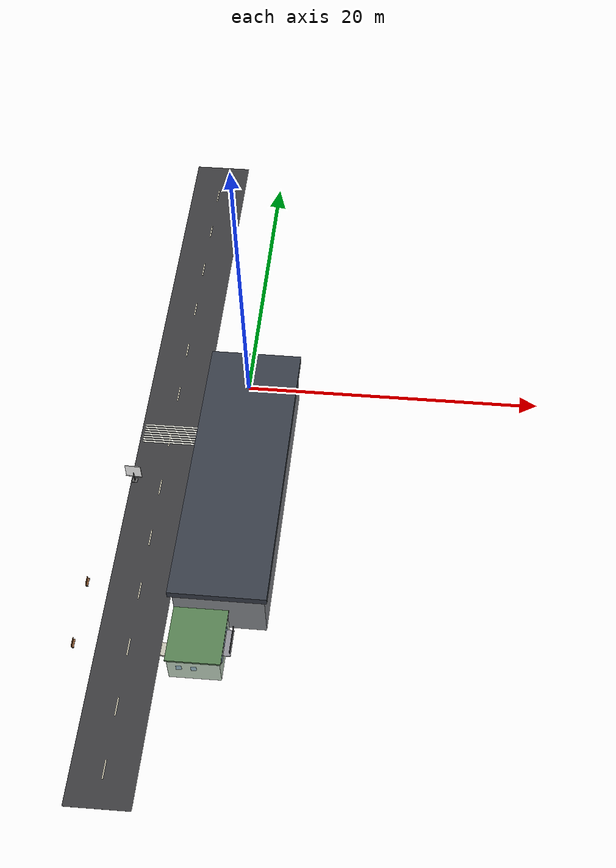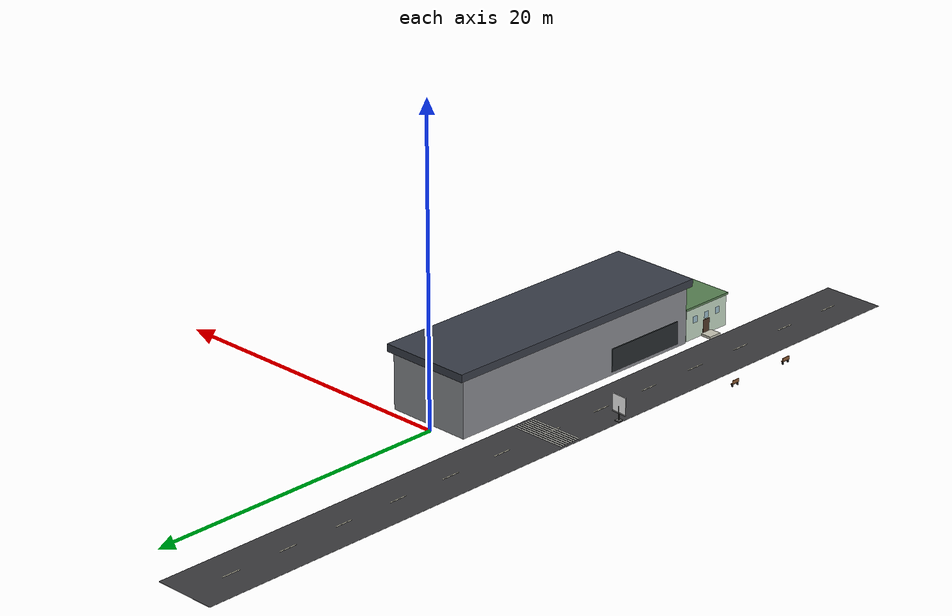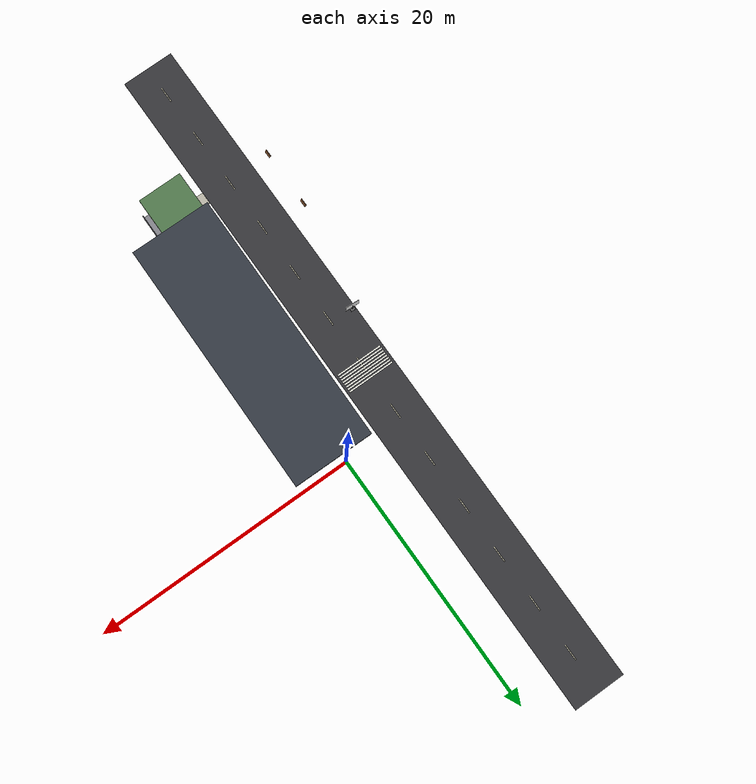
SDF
<sdf version="1.10">
 <world name="city">
  <model name="road_central_northsouth">
   <static>true</static>
   <pose>-4.79999389648438 -4.47619018554688 0 0 0 1.57080003571763</pose>
   <link name="link">
    <collision name="road_col">
     <pose>0 0 0.004 0 0 0</pose>
     <geometry><box><size>53.6 4 0.008</size></box></geometry>
    </collision>
    <visual name="road_vis">
     <pose>0 0 0.004 0 0 0</pose>
     <geometry><box><size>53.6 4 0.008</size></box></geometry>
     <material>
      <ambient>0.230000004 0.230000004 0.239999995 1</ambient>
      <diffuse>0.230000004 0.230000004 0.239999995 1</diffuse>
      <specular>0.0799999982 0.0799999982 0.0799999982 1</specular>
     </material>
    </visual>
    <visual name="dash0_vis">
     <pose>-24.4 0 0.0088 0 0 0</pose>
     <geometry><box><size>1.2 0.072 0.004</size></box></geometry>
     <material>
      <ambient>0.959999979 0.939999998 0.829999983 1</ambient>
      <diffuse>0.959999979 0.939999998 0.829999983 1</diffuse>
      <specular>0.0799999982 0.0799999982 0.0799999982 1</specular>
     </material>
    </visual>
    <visual name="dash1_vis">
     <pose>-20.4 0 0.0088 0 0 0</pose>
     <geometry><box><size>1.2 0.072 0.004</size></box></geometry>
     <material>
      <ambient>0.959999979 0.939999998 0.829999983 1</ambient>
      <diffuse>0.959999979 0.939999998 0.829999983 1</diffuse>
      <specular>0.0799999982 0.0799999982 0.0799999982 1</specular>
     </material>
    </visual>
    <visual name="dash2_vis">
     <pose>-16.4 0 0.0088 0 0 0</pose>
     <geometry><box><size>1.2 0.072 0.004</size></box></geometry>
     <material>
      <ambient>0.959999979 0.939999998 0.829999983 1</ambient>
      <diffuse>0.959999979 0.939999998 0.829999983 1</diffuse>
      <specular>0.0799999982 0.0799999982 0.0799999982 1</specular>
     </material>
    </visual>
    <visual name="dash3_vis">
     <pose>-12.4 0 0.0088 0 0 0</pose>
     <geometry><box><size>1.2 0.072 0.004</size></box></geometry>
     <material>
      <ambient>0.959999979 0.939999998 0.829999983 1</ambient>
      <diffuse>0.959999979 0.939999998 0.829999983 1</diffuse>
      <specular>0.0799999982 0.0799999982 0.0799999982 1</specular>
     </material>
    </visual>
    <visual name="dash4_vis">
     <pose>-8.4 0 0.0088 0 0 0</pose>
     <geometry><box><size>1.2 0.072 0.004</size></box></geometry>
     <material>
      <ambient>0.959999979 0.939999998 0.829999983 1</ambient>
      <diffuse>0.959999979 0.939999998 0.829999983 1</diffuse>
      <specular>0.0799999982 0.0799999982 0.0799999982 1</specular>
     </material>
    </visual>
    <visual name="dash5_vis">
     <pose>-4.4 0 0.0088 0 0 0</pose>
     <geometry><box><size>1.2 0.072 0.004</size></box></geometry>
     <material>
      <ambient>0.959999979 0.939999998 0.829999983 1</ambient>
      <diffuse>0.959999979 0.939999998 0.829999983 1</diffuse>
      <specular>0.0799999982 0.0799999982 0.0799999982 1</specular>
     </material>
    </visual>
    <visual name="dash6_vis">
     <pose>-0.4 0 0.0088 0 0 0</pose>
     <geometry><box><size>1.2 0.072 0.004</size></box></geometry>
     <material>
      <ambient>0.959999979 0.939999998 0.829999983 1</ambient>
      <diffuse>0.959999979 0.939999998 0.829999983 1</diffuse>
      <specular>0.0799999982 0.0799999982 0.0799999982 1</specular>
     </material>
    </visual>
    <visual name="dash7_vis">
     <pose>3.6 0 0.0088 0 0 0</pose>
     <geometry><box><size>1.2 0.072 0.004</size></box></geometry>
     <material>
      <ambient>0.959999979 0.939999998 0.829999983 1</ambient>
      <diffuse>0.959999979 0.939999998 0.829999983 1</diffuse>
      <specular>0.0799999982 0.0799999982 0.0799999982 1</specular>
     </material>
    </visual>
    <visual name="dash8_vis">
     <pose>7.6 0 0.0088 0 0 0</pose>
     <geometry><box><size>1.2 0.072 0.004</size></box></geometry>
     <material>
      <ambient>0.959999979 0.939999998 0.829999983 1</ambient>
      <diffuse>0.959999979 0.939999998 0.829999983 1</diffuse>
      <specular>0.0799999982 0.0799999982 0.0799999982 1</specular>
     </material>
    </visual>
    <visual name="dash9_vis">
     <pose>11.6 0 0.0088 0 0 0</pose>
     <geometry><box><size>1.2 0.072 0.004</size></box></geometry>
     <material>
      <ambient>0.959999979 0.939999998 0.829999983 1</ambient>
      <diffuse>0.959999979 0.939999998 0.829999983 1</diffuse>
      <specular>0.0799999982 0.0799999982 0.0799999982 1</specular>
     </material>
    </visual>
    <visual name="dash10_vis">
     <pose>15.6 0 0.0088 0 0 0</pose>
     <geometry><box><size>1.2 0.072 0.004</size></box></geometry>
     <material>
      <ambient>0.959999979 0.939999998 0.829999983 1</ambient>
      <diffuse>0.959999979 0.939999998 0.829999983 1</diffuse>
      <specular>0.0799999982 0.0799999982 0.0799999982 1</specular>
     </material>
    </visual>
    <visual name="dash11_vis">
     <pose>19.6 0 0.0088 0 0 0</pose>
     <geometry><box><size>1.2 0.072 0.004</size></box></geometry>
     <material>
      <ambient>0.959999979 0.939999998 0.829999983 1</ambient>
      <diffuse>0.959999979 0.939999998 0.829999983 1</diffuse>
      <specular>0.0799999982 0.0799999982 0.0799999982 1</specular>
     </material>
    </visual>
    <visual name="dash12_vis">
     <pose>23.6 0 0.0088 0 0 0</pose>
     <geometry><box><size>1.2 0.072 0.004</size></box></geometry>
     <material>
      <ambient>0.959999979 0.939999998 0.829999983 1</ambient>
      <diffuse>0.959999979 0.939999998 0.829999983 1</diffuse>
      <specular>0.0799999982 0.0799999982 0.0799999982 1</specular>
     </material>
    </visual>
    <visual name="cw0_vis">
     <pose>-0.7 0 0.0088 0 0 0</pose>
     <geometry><box><size>0.112 3.64 0.0048</size></box></geometry>
     <material>
      <ambient>0.959999979 0.959999979 0.920000017 1</ambient>
      <diffuse>0.959999979 0.959999979 0.920000017 1</diffuse>
      <specular>0.0799999982 0.0799999982 0.0799999982 1</specular>
     </material>
    </visual>
    <visual name="cw1_vis">
     <pose>-0.5 0 0.0088 0 0 0</pose>
     <geometry><box><size>0.112 3.64 0.0048</size></box></geometry>
     <material>
      <ambient>0.959999979 0.959999979 0.920000017 1</ambient>
      <diffuse>0.959999979 0.959999979 0.920000017 1</diffuse>
      <specular>0.0799999982 0.0799999982 0.0799999982 1</specular>
     </material>
    </visual>
    <visual name="cw2_vis">
     <pose>-0.3 0 0.0088 0 0 0</pose>
     <geometry><box><size>0.112 3.64 0.0048</size></box></geometry>
     <material>
      <ambient>0.959999979 0.959999979 0.920000017 1</ambient>
      <diffuse>0.959999979 0.959999979 0.920000017 1</diffuse>
      <specular>0.0799999982 0.0799999982 0.0799999982 1</specular>
     </material>
    </visual>
    <visual name="cw3_vis">
     <pose>-0.1 0 0.0088 0 0 0</pose>
     <geometry><box><size>0.112 3.64 0.0048</size></box></geometry>
     <material>
      <ambient>0.959999979 0.959999979 0.920000017 1</ambient>
      <diffuse>0.959999979 0.959999979 0.920000017 1</diffuse>
      <specular>0.0799999982 0.0799999982 0.0799999982 1</specular>
     </material>
    </visual>
    <visual name="cw4_vis">
     <pose>0.1 0 0.0088 0 0 0</pose>
     <geometry><box><size>0.112 3.64 0.0048</size></box></geometry>
     <material>
      <ambient>0.959999979 0.959999979 0.920000017 1</ambient>
      <diffuse>0.959999979 0.959999979 0.920000017 1</diffuse>
      <specular>0.0799999982 0.0799999982 0.0799999982 1</specular>
     </material>
    </visual>
    <visual name="cw5_vis">
     <pose>0.3 0 0.0088 0 0 0</pose>
     <geometry><box><size>0.112 3.64 0.0048</size></box></geometry>
     <material>
      <ambient>0.959999979 0.959999979 0.920000017 1</ambient>
      <diffuse>0.959999979 0.959999979 0.920000017 1</diffuse>
      <specular>0.0799999982 0.0799999982 0.0799999982 1</specular>
     </material>
    </visual>
    <visual name="cw6_vis">
     <pose>0.5 0 0.0088 0 0 0</pose>
     <geometry><box><size>0.112 3.64 0.0048</size></box></geometry>
     <material>
      <ambient>0.959999979 0.959999979 0.920000017 1</ambient>
      <diffuse>0.959999979 0.959999979 0.920000017 1</diffuse>
      <specular>0.0799999982 0.0799999982 0.0799999982 1</specular>
     </material>
    </visual>
    <visual name="cw7_vis">
     <pose>0.7 0 0.0088 0 0 0</pose>
     <geometry><box><size>0.112 3.64 0.0048</size></box></geometry>
     <material>
      <ambient>0.959999979 0.959999979 0.920000017 1</ambient>
      <diffuse>0.959999979 0.959999979 0.920000017 1</diffuse>
      <specular>0.0799999982 0.0799999982 0.0799999982 1</specular>
     </material>
    </visual>
    <inertial>
     <mass>1</mass>
     <inertia><ixx>1</ixx><ixy>0</ixy><ixz>0</ixz><iyy>1</iyy><iyz>0</iyz><izz>1</izz></inertia>
    </inertial>
   </link>
  </model>
  <model name="house_3">
   <static>true</static>
   <pose>-0.420347356796265 -20.9060256958008 0 0 0 -1.57155994340436</pose>
   <link name="link">
    <collision name="body_col">
     <pose>0 0 1 0 0 0</pose>
     <geometry><box><size>3.52 3.2 2</size></box></geometry>
    </collision>
    <visual name="body_vis">
     <pose>0 0 1 0 0 0</pose>
     <geometry><box><size>3.52 3.2 2</size></box></geometry>
     <material>
      <ambient>0.779999971 0.860000014 0.779999971 1</ambient>
      <diffuse>0.779999971 0.860000014 0.779999971 1</diffuse>
      <specular>0.0799999982 0.0799999982 0.0799999982 1</specular>
     </material>
    </visual>
    <collision name="roof_col">
     <pose>0 0 2.07 0 0 0</pose>
     <geometry><box><size>3.68 3.36 0.14</size></box></geometry>
    </collision>
    <visual name="roof_vis">
     <pose>0 0 2.07 0 0 0</pose>
     <geometry><box><size>3.68 3.36 0.14</size></box></geometry>
     <material>
      <ambient>0.340000004 0.5 0.319999993 1</ambient>
      <diffuse>0.340000004 0.5 0.319999993 1</diffuse>
      <specular>0.0799999982 0.0799999982 0.0799999982 1</specular>
     </material>
    </visual>
    <visual name="door_vis">
     <pose>0 -1.616 0.48 0 0 0</pose>
     <geometry><box><size>0.52 0.04 0.96</size></box></geometry>
     <material>
      <ambient>0.319999993 0.219999999 0.159999996 1</ambient>
      <diffuse>0.319999993 0.219999999 0.159999996 1</diffuse>
      <specular>0.0799999982 0.0799999982 0.0799999982 1</specular>
     </material>
    </visual>
    <visual name="win_south_0">
     <pose>-0.9856 -1.612 1.24 0 0 0</pose>
     <geometry><box><size>0.34 0.032 0.4</size></box></geometry>
     <material>
      <ambient>0.550000012 0.720000029 0.879999995 0.550000012</ambient>
      <diffuse>0.550000012 0.720000029 0.879999995 0.550000012</diffuse>
      <specular>0.0799999982 0.0799999982 0.0799999982 1</specular>
      <transparency>0.35</transparency>
     </material>
    </visual>
    <visual name="win_south_1">
     <pose>0 -1.612 1.24 0 0 0</pose>
     <geometry><box><size>0.34 0.032 0.4</size></box></geometry>
     <material>
      <ambient>0.550000012 0.720000029 0.879999995 0.550000012</ambient>
      <diffuse>0.550000012 0.720000029 0.879999995 0.550000012</diffuse>
      <specular>0.0799999982 0.0799999982 0.0799999982 1</specular>
      <transparency>0.35</transparency>
     </material>
    </visual>
    <visual name="win_south_2">
     <pose>0.9856 -1.612 1.24 0 0 0</pose>
     <geometry><box><size>0.34 0.032 0.4</size></box></geometry>
     <material>
      <ambient>0.550000012 0.720000029 0.879999995 0.550000012</ambient>
      <diffuse>0.550000012 0.720000029 0.879999995 0.550000012</diffuse>
      <specular>0.0799999982 0.0799999982 0.0799999982 1</specular>
      <transparency>0.35</transparency>
     </material>
    </visual>
    <visual name="win_west_0">
     <pose>-1.772 -0.896 1.24 0 0 0</pose>
     <geometry><box><size>0.032 0.34 0.4</size></box></geometry>
     <material>
      <ambient>0.550000012 0.720000029 0.879999995 0.550000012</ambient>
      <diffuse>0.550000012 0.720000029 0.879999995 0.550000012</diffuse>
      <specular>0.0799999982 0.0799999982 0.0799999982 1</specular>
      <transparency>0.35</transparency>
     </material>
    </visual>
    <visual name="win_west_1">
     <pose>-1.772 0 1.24 0 0 0</pose>
     <geometry><box><size>0.032 0.34 0.4</size></box></geometry>
     <material>
      <ambient>0.550000012 0.720000029 0.879999995 0.550000012</ambient>
      <diffuse>0.550000012 0.720000029 0.879999995 0.550000012</diffuse>
      <specular>0.0799999982 0.0799999982 0.0799999982 1</specular>
      <transparency>0.35</transparency>
     </material>
    </visual>
    <visual name="win_east_0">
     <pose>1.772 -0.896 1.24 0 0 0</pose>
     <geometry><box><size>0.032 0.34 0.4</size></box></geometry>
     <material>
      <ambient>0.550000012 0.720000029 0.879999995 0.550000012</ambient>
      <diffuse>0.550000012 0.720000029 0.879999995 0.550000012</diffuse>
      <specular>0.0799999982 0.0799999982 0.0799999982 1</specular>
      <transparency>0.35</transparency>
     </material>
    </visual>
    <visual name="win_east_1">
     <pose>1.772 0 1.24 0 0 0</pose>
     <geometry><box><size>0.032 0.34 0.4</size></box></geometry>
     <material>
      <ambient>0.550000012 0.720000029 0.879999995 0.550000012</ambient>
      <diffuse>0.550000012 0.720000029 0.879999995 0.550000012</diffuse>
      <specular>0.0799999982 0.0799999982 0.0799999982 1</specular>
      <transparency>0.35</transparency>
     </material>
    </visual>
    <visual name="win_north_0">
     <pose>-0.9856 1.612 1.24 0 0 0</pose>
     <geometry><box><size>0.34 0.032 0.4</size></box></geometry>
     <material>
      <ambient>0.550000012 0.720000029 0.879999995 0.550000012</ambient>
      <diffuse>0.550000012 0.720000029 0.879999995 0.550000012</diffuse>
      <specular>0.0799999982 0.0799999982 0.0799999982 1</specular>
      <transparency>0.35</transparency>
     </material>
    </visual>
    <visual name="win_north_1">
     <pose>0 1.612 1.24 0 0 0</pose>
     <geometry><box><size>0.34 0.032 0.4</size></box></geometry>
     <material>
      <ambient>0.550000012 0.720000029 0.879999995 0.550000012</ambient>
      <diffuse>0.550000012 0.720000029 0.879999995 0.550000012</diffuse>
      <specular>0.0799999982 0.0799999982 0.0799999982 1</specular>
      <transparency>0.35</transparency>
     </material>
    </visual>
    <visual name="win_north_2">
     <pose>0.9856 1.612 1.24 0 0 0</pose>
     <geometry><box><size>0.34 0.032 0.4</size></box></geometry>
     <material>
      <ambient>0.550000012 0.720000029 0.879999995 0.550000012</ambient>
      <diffuse>0.550000012 0.720000029 0.879999995 0.550000012</diffuse>
      <specular>0.0799999982 0.0799999982 0.0799999982 1</specular>
      <transparency>0.35</transparency>
     </material>
    </visual>
    <collision name="porch_col">
     <pose>0 -2 0.072 0 0 0</pose>
     <geometry><box><size>0.88 0.72 0.144</size></box></geometry>
    </collision>
    <visual name="porch_vis">
     <pose>0 -2 0.072 0 0 0</pose>
     <geometry><box><size>0.88 0.72 0.144</size></box></geometry>
     <material>
      <ambient>0.769999981 0.75999999 0.699999988 1</ambient>
      <diffuse>0.769999981 0.75999999 0.699999988 1</diffuse>
      <specular>0.0799999982 0.0799999982 0.0799999982 1</specular>
     </material>
    </visual>
    <visual name="balcony">
     <pose>0 1.88 1.44 0 0 0</pose>
     <geometry><box><size>1.76 0.44 0.06</size></box></geometry>
     <material>
      <ambient>0.550000012 0.550000012 0.579999983 1</ambient>
      <diffuse>0.550000012 0.550000012 0.579999983 1</diffuse>
      <specular>0.0799999982 0.0799999982 0.0799999982 1</specular>
     </material>
    </visual>
    <visual name="balustrade">
     <pose>0 2.072 1.84 0 0 0</pose>
     <geometry><box><size>1.76 0.032 0.32</size></box></geometry>
     <material>
      <ambient>0.300000012 0.300000012 0.319999993 1</ambient>
      <diffuse>0.300000012 0.300000012 0.319999993 1</diffuse>
      <specular>0.0799999982 0.0799999982 0.0799999982 1</specular>
     </material>
    </visual>
    <inertial>
     <mass>1</mass>
     <inertia><ixx>1</ixx><ixy>0</ixy><ixz>0</ixz><iyy>1</iyy><iyz>0</iyz><izz>1</izz></inertia>
    </inertial>
   </link>
  </model>
  <model name="market_fence">
   <static>true</static>
   <pose>11.6 -18.4 0 0 0 0</pose>
   <link name="link">
    <inertial>
     <mass>1</mass>
     <inertia><ixx>1</ixx><ixy>0</ixy><ixz>0</ixz><iyy>1</iyy><iyz>0</iyz><izz>1</izz></inertia>
    </inertial>
    <link name="link">
     <collision name="c1">
      <pose>0 1.92 0.24 0 0 0</pose>
      <geometry><box><size>4.8 0.048 0.48</size></box></geometry>
     </collision>
     <visual name="v1">
      <pose>0 1.92 0.24 0 0 0</pose>
      <geometry><box><size>4.8 0.048 0.48</size></box></geometry>
      <material>
       <ambient>0.400 0.400 0.420 1.000</ambient>
       <diffuse>0.400 0.400 0.420 1.000</diffuse>
       <specular>0.08 0.08 0.08 1</specular>
      </material>
     </visual>
     <collision name="c2">
      <pose>0 -1.92 0.24 0 0 0</pose>
      <geometry><box><size>4.8 0.048 0.48</size></box></geometry>
     </collision>
     <visual name="v2">
      <pose>0 -1.92 0.24 0 0 0</pose>
      <geometry><box><size>4.8 0.048 0.48</size></box></geometry>
      <material>
       <ambient>0.400 0.400 0.420 1.000</ambient>
       <diffuse>0.400 0.400 0.420 1.000</diffuse>
       <specular>0.08 0.08 0.08 1</specular>
      </material>
     </visual>
    </link>
   </link>
  </model>
  <model name="supermarket_qr_sign">
   <static>true</static>
   <pose>-6.56469955444336 -8.45673599243164 0 0 0 3.08768999878715</pose>
   <link name="link">
    <collision name="post_col">
     <pose>0 0 0.46 0 0 0</pose>
     <geometry><box><size>0.056 0.056 0.92</size></box></geometry>
    </collision>
    <visual name="post_vis">
     <pose>0 0 0.46 0 0 0</pose>
     <geometry><box><size>0.056 0.056 0.92</size></box></geometry>
     <material>
      <ambient>0.239999995 0.239999995 0.239999995 1</ambient>
      <diffuse>0.239999995 0.239999995 0.239999995 1</diffuse>
      <specular>0.0799999982 0.0799999982 0.0799999982 1</specular>
     </material>
    </visual>
    <collision name="base_col">
     <pose>0 0 0.024 0 0 0</pose>
     <geometry><box><size>0.34 0.34 0.048</size></box></geometry>
    </collision>
    <visual name="base_vis">
     <pose>0 0 0.024 0 0 0</pose>
     <geometry><box><size>0.34 0.34 0.048</size></box></geometry>
     <material>
      <ambient>0.379999995 0.379999995 0.379999995 1</ambient>
      <diffuse>0.379999995 0.379999995 0.379999995 1</diffuse>
      <specular>0.0799999982 0.0799999982 0.0799999982 1</specular>
     </material>
    </visual>
    <visual name="back_vis">
     <pose>0 0 0.48 0 0 0</pose>
     <geometry><box><size>1.1 0.024 0.06</size></box></geometry>
     <material>
      <ambient>0.920000017 0.920000017 0.920000017 1</ambient>
      <diffuse>0.920000017 0.920000017 0.920000017 1</diffuse>
      <specular>0.0500000007 0.0500000007 0.0500000007 1</specular>
     </material>
    </visual>
    <visual name="qr_vis">
     <pose>0 0 1.06 0 0 0</pose>
     <geometry><box><size>1.04 0.04 1.04</size></box></geometry>
     <material>
      <ambient>1 1 1 1</ambient>
      <diffuse>1 1 1 1</diffuse>
      <specular>0.0500000007 0.0500000007 0.0500000007 1</specular>
      <pbr><metal><metalness>0.0</metalness><roughness>1.0</roughness></metal></pbr>
     </material>
    </visual>
    <inertial>
     <mass>1</mass>
     <inertia><ixx>1</ixx><ixy>0</ixy><ixz>0</ixz><iyy>1</iyy><iyz>0</iyz><izz>1</izz></inertia>
    </inertial>
   </link>
  </model>
  <model name="gallery_long_warehouse_2_1">
   <static>true</static>
   <pose>0.729167032241821 -9.81719970703125 0 0 0 1.56529000278796</pose>
   <link name="body">
    <collision name="collision">
     <pose>0 0 1.8 0 0 0</pose>
     <geometry><box><size>18.4 5.6 3.6</size></box></geometry>
    </collision>
    <visual name="main">
     <pose>0 0 1.8 0 0 0</pose>
     <geometry><box><size>18.4 5.6 3.6</size></box></geometry>
     <material>
      <ambient>0.540000021 0.550000012 0.569999993 1</ambient>
      <diffuse>0.540000021 0.550000012 0.569999993 1</diffuse>
      <specular>0.0500000007 0.0500000007 0.0500000007 1</specular>
     </material>
    </visual>
    <visual name="roof">
     <pose>0 0 3.88 0 0 0</pose>
     <geometry><box><size>19 6 0.48</size></box></geometry>
     <material>
      <ambient>0.219999999 0.239999995 0.280000001 1</ambient>
      <diffuse>0.219999999 0.239999995 0.280000001 1</diffuse>
      <specular>0.0399999991 0.0399999991 0.0399999991 1</specular>
     </material>
    </visual>
    <visual name="loading_bays">
     <pose>-5.6 2.84 0.96 0 0 0</pose>
     <geometry><box><size>5.6 0.08 1.44</size></box></geometry>
     <material>
      <ambient>0.150000006 0.170000002 0.180000007 1</ambient>
      <diffuse>0.150000006 0.170000002 0.180000007 1</diffuse>
      <specular>0.0199999996 0.0199999996 0.0199999996 1</specular>
     </material>
    </visual>
    <inertial>
     <mass>1</mass>
     <inertia><ixx>1</ixx><ixy>0</ixy><ixz>0</ixz><iyy>1</iyy><iyz>0</iyz><izz>1</izz></inertia>
    </inertial>
   </link>
  </model>
  <model name="bench_1_1">
   <static>true</static>
   <pose>-8.16588716585415 -20.9928678430596 0 0 0 -1.57385998235563</pose>
   <link name="link">
    <visual name="seat">
     <pose>0 0 0.18 0 0 0</pose>
     <geometry><box><size>0.56 0.14 0.032</size></box></geometry>
     <material>
      <ambient>0.550000012 0.349999994 0.200000003 1</ambient>
      <diffuse>0.550000012 0.349999994 0.200000003 1</diffuse>
      <specular>0.0799999982 0.0799999982 0.0799999982 1</specular>
     </material>
    </visual>
    <visual name="back">
     <pose>0 -0.048 0.3 0 0 0</pose>
     <geometry><box><size>0.56 0.032 0.22</size></box></geometry>
     <material>
      <ambient>0.550000012 0.349999994 0.200000003 1</ambient>
      <diffuse>0.550000012 0.349999994 0.200000003 1</diffuse>
      <specular>0.0799999982 0.0799999982 0.0799999982 1</specular>
     </material>
    </visual>
    <visual name="leg1">
     <pose>-0.22 0 0.088 0 0 0</pose>
     <geometry><box><size>0.032 0.112 0.176</size></box></geometry>
     <material>
      <ambient>0.180000007 0.180000007 0.180000007 1</ambient>
      <diffuse>0.180000007 0.180000007 0.180000007 1</diffuse>
      <specular>0.0799999982 0.0799999982 0.0799999982 1</specular>
     </material>
    </visual>
    <visual name="leg2">
     <pose>0.22 0 0.088 0 0 0</pose>
     <geometry><box><size>0.032 0.112 0.176</size></box></geometry>
     <material>
      <ambient>0.180000007 0.180000007 0.180000007 1</ambient>
      <diffuse>0.180000007 0.180000007 0.180000007 1</diffuse>
      <specular>0.0799999982 0.0799999982 0.0799999982 1</specular>
     </material>
    </visual>
    <inertial>
     <mass>1</mass>
     <inertia><ixx>1</ixx><ixy>0</ixy><ixz>0</ixz><iyy>1</iyy><iyz>0</iyz><izz>1</izz></inertia>
    </inertial>
   </link>
  </model>
  <model name="bench_1_2">
   <static>true</static>
   <pose>-8.13766636169757 -16.5959256699557 0 0 0 -1.57385998235563</pose>
   <link name="link">
    <visual name="seat">
     <pose>0 0 0.18 0 0 0</pose>
     <geometry><box><size>0.56 0.14 0.032</size></box></geometry>
     <material>
      <ambient>0.550000012 0.349999994 0.200000003 1</ambient>
      <diffuse>0.550000012 0.349999994 0.200000003 1</diffuse>
      <specular>0.0799999982 0.0799999982 0.0799999982 1</specular>
     </material>
    </visual>
    <visual name="back">
     <pose>0 -0.048 0.3 0 0 0</pose>
     <geometry><box><size>0.56 0.032 0.22</size></box></geometry>
     <material>
      <ambient>0.550000012 0.349999994 0.200000003 1</ambient>
      <diffuse>0.550000012 0.349999994 0.200000003 1</diffuse>
      <specular>0.0799999982 0.0799999982 0.0799999982 1</specular>
     </material>
    </visual>
    <visual name="leg1">
     <pose>-0.22 0 0.088 0 0 0</pose>
     <geometry><box><size>0.032 0.112 0.176</size></box></geometry>
     <material>
      <ambient>0.180000007 0.180000007 0.180000007 1</ambient>
      <diffuse>0.180000007 0.180000007 0.180000007 1</diffuse>
      <specular>0.0799999982 0.0799999982 0.0799999982 1</specular>
     </material>
    </visual>
    <visual name="leg2">
     <pose>0.22 0 0.088 0 0 0</pose>
     <geometry><box><size>0.032 0.112 0.176</size></box></geometry>
     <material>
      <ambient>0.180000007 0.180000007 0.180000007 1</ambient>
      <diffuse>0.180000007 0.180000007 0.180000007 1</diffuse>
      <specular>0.0799999982 0.0799999982 0.0799999982 1</specular>
     </material>
    </visual>
    <inertial>
     <mass>1</mass>
     <inertia><ixx>1</ixx><ixy>0</ixy><ixz>0</ixz><iyy>1</iyy><iyz>0</iyz><izz>1</izz></inertia>
    </inertial>
   </link>
  </model>
 </world>
</sdf>
